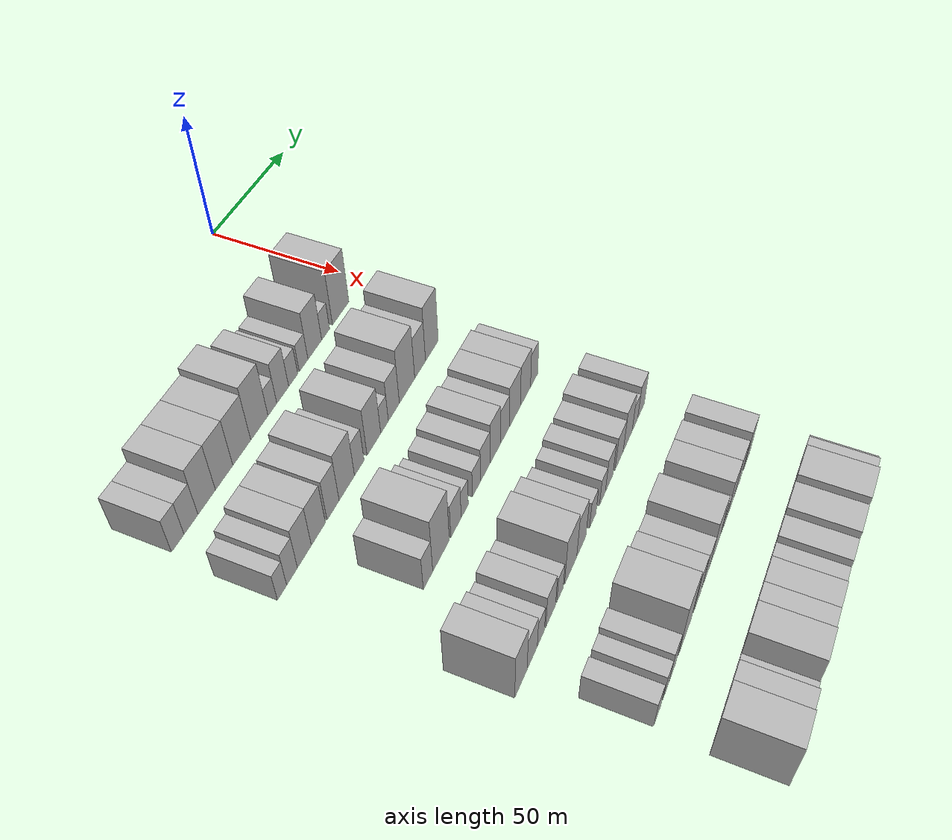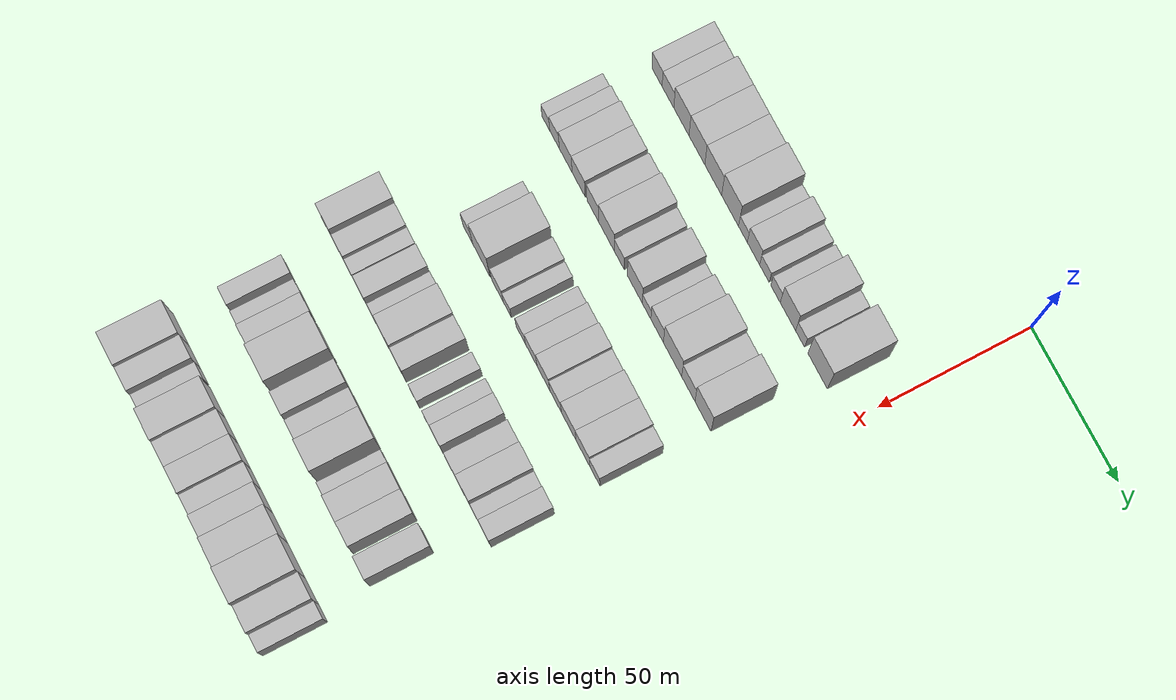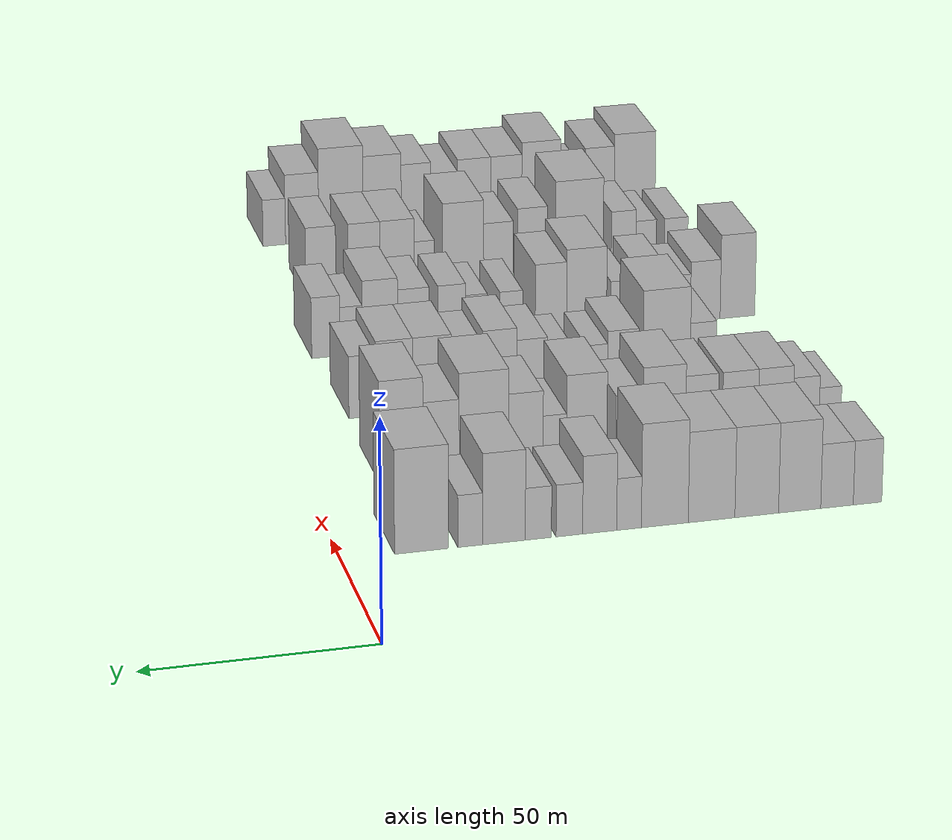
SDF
<sdf version="1.6">
 <world name="default">
  <model name="building_52">
   <static>1</static>
   <pose>50.0000 -115.1407 0 0.000000 0.000000 0.000000</pose>
   <link name="link">
    <pose>0 0 7.50 0 0 0</pose>
    <collision name="collision"><geometry><box><size>20.0000 6.3788 15.0000</size></box></geometry></collision>
    <visual name="visual">
     <cast_shadows>0</cast_shadows>
     <geometry><box><size>20.0000 6.3788 15.0000</size></box></geometry>
     <material>
      <script>
       <uri>model://HANNAS_wall/materials/scripts</uri>
       <uri>model://HANNAS_wall/materials/textures</uri>
       <name>vrc/HANNAS_wall</name>
      </script>
     </material>
    </visual>
   </link>
  </model>
  <model name="building_53">
   <static>1</static>
   <pose>50.0000 -108.3035 0 0.000000 0.000000 0.000000</pose>
   <link name="link">
    <pose>0 0 7.50 0 0 0</pose>
    <collision name="collision"><geometry><box><size>20.0000 7.2955 15.0000</size></box></geometry></collision>
    <visual name="visual">
     <cast_shadows>0</cast_shadows>
     <geometry><box><size>20.0000 7.2955 15.0000</size></box></geometry>
     <material>
      <script>
       <uri>model://HANNAS_wall/materials/scripts</uri>
       <uri>model://HANNAS_wall/materials/textures</uri>
       <name>vrc/HANNAS_wall</name>
      </script>
     </material>
    </visual>
   </link>
  </model>
  <model name="building_54">
   <static>1</static>
   <pose>50.0000 -99.9604 0 0.000000 0.000000 0.000000</pose>
   <link name="link">
    <pose>0 0 10.50 0 0 0</pose>
    <collision name="collision"><geometry><box><size>20.0000 9.3906 21.0000</size></box></geometry></collision>
    <visual name="visual">
     <cast_shadows>0</cast_shadows>
     <geometry><box><size>20.0000 9.3906 21.0000</size></box></geometry>
     <material>
      <script>
       <uri>model://HANNAS_wall/materials/scripts</uri>
       <uri>model://HANNAS_wall/materials/textures</uri>
       <name>vrc/HANNAS_wall</name>
      </script>
     </material>
    </visual>
   </link>
  </model>
  <model name="building_55">
   <static>1</static>
   <pose>50.0000 -90.4165 0 0.000000 0.000000 0.000000</pose>
   <link name="link">
    <pose>0 0 10.50 0 0 0</pose>
    <collision name="collision"><geometry><box><size>20.0000 9.6972 21.0000</size></box></geometry></collision>
    <visual name="visual">
     <cast_shadows>0</cast_shadows>
     <geometry><box><size>20.0000 9.6972 21.0000</size></box></geometry>
     <material>
      <script>
       <uri>model://HANNAS_wall/materials/scripts</uri>
       <uri>model://HANNAS_wall/materials/textures</uri>
       <name>vrc/HANNAS_wall</name>
      </script>
     </material>
    </visual>
   </link>
  </model>
  <model name="building_56">
   <static>1</static>
   <pose>50.0000 -80.4084 0 0.000000 0.000000 0.000000</pose>
   <link name="link">
    <pose>0 0 10.50 0 0 0</pose>
    <collision name="collision"><geometry><box><size>20.0000 10.3191 21.0000</size></box></geometry></collision>
    <visual name="visual">
     <cast_shadows>0</cast_shadows>
     <geometry><box><size>20.0000 10.3191 21.0000</size></box></geometry>
     <material>
      <script>
       <uri>model://HANNAS_wall/materials/scripts</uri>
       <uri>model://HANNAS_wall/materials/textures</uri>
       <name>vrc/HANNAS_wall</name>
      </script>
     </material>
    </visual>
   </link>
  </model>
  <model name="building_57">
   <static>1</static>
   <pose>50.0000 -70.0947 0 0.000000 0.000000 0.000000</pose>
   <link name="link">
    <pose>0 0 12.00 0 0 0</pose>
    <collision name="collision"><geometry><box><size>20.0000 10.3084 24.0000</size></box></geometry></collision>
    <visual name="visual">
     <cast_shadows>0</cast_shadows>
     <geometry><box><size>20.0000 10.3084 24.0000</size></box></geometry>
     <material>
      <script>
       <uri>model://HANNAS_wall/materials/scripts</uri>
       <uri>model://HANNAS_wall/materials/textures</uri>
       <name>vrc/HANNAS_wall</name>
      </script>
     </material>
    </visual>
   </link>
  </model>
  <model name="building_58">
   <static>1</static>
   <pose>50.0000 -62.2498 0 0.000000 0.000000 0.000000</pose>
   <link name="link">
    <pose>0 0 6.00 0 0 0</pose>
    <collision name="collision"><geometry><box><size>20.0000 5.3814 12.0000</size></box></geometry></collision>
    <visual name="visual">
     <cast_shadows>0</cast_shadows>
     <geometry><box><size>20.0000 5.3814 12.0000</size></box></geometry>
     <material>
      <script>
       <uri>model://HANNAS_wall/materials/scripts</uri>
       <uri>model://HANNAS_wall/materials/textures</uri>
       <name>vrc/HANNAS_wall</name>
      </script>
     </material>
    </visual>
   </link>
  </model>
  <model name="building_59">
   <static>1</static>
   <pose>50.0000 -55.8324 0 0.000000 0.000000 0.000000</pose>
   <link name="link">
    <pose>0 0 9.00 0 0 0</pose>
    <collision name="collision"><geometry><box><size>20.0000 7.4535 18.0000</size></box></geometry></collision>
    <visual name="visual">
     <cast_shadows>0</cast_shadows>
     <geometry><box><size>20.0000 7.4535 18.0000</size></box></geometry>
     <material>
      <script>
       <uri>model://HANNAS_wall/materials/scripts</uri>
       <uri>model://HANNAS_wall/materials/textures</uri>
       <name>vrc/HANNAS_wall</name>
      </script>
     </material>
    </visual>
   </link>
  </model>
  <model name="building_60">
   <static>1</static>
   <pose>50.0000 -49.2117 0 0.000000 0.000000 0.000000</pose>
   <link name="link">
    <pose>0 0 6.00 0 0 0</pose>
    <collision name="collision"><geometry><box><size>20.0000 5.7879 12.0000</size></box></geometry></collision>
    <visual name="visual">
     <cast_shadows>0</cast_shadows>
     <geometry><box><size>20.0000 5.7879 12.0000</size></box></geometry>
     <material>
      <script>
       <uri>model://HANNAS_wall/materials/scripts</uri>
       <uri>model://HANNAS_wall/materials/textures</uri>
       <name>vrc/HANNAS_wall</name>
      </script>
     </material>
    </visual>
   </link>
  </model>
  <model name="building_61">
   <static>1</static>
   <pose>50.0000 -42.4862 0 0.000000 0.000000 0.000000</pose>
   <link name="link">
    <pose>0 0 6.00 0 0 0</pose>
    <collision name="collision"><geometry><box><size>20.0000 5.6632 12.0000</size></box></geometry></collision>
    <visual name="visual">
     <cast_shadows>0</cast_shadows>
     <geometry><box><size>20.0000 5.6632 12.0000</size></box></geometry>
     <material>
      <script>
       <uri>model://HANNAS_wall/materials/scripts</uri>
       <uri>model://HANNAS_wall/materials/textures</uri>
       <name>vrc/HANNAS_wall</name>
      </script>
     </material>
    </visual>
   </link>
  </model>
  <model name="building_62">
   <static>1</static>
   <pose>50.0000 -35.0525 0 0.000000 0.000000 0.000000</pose>
   <link name="link">
    <pose>0 0 10.50 0 0 0</pose>
    <collision name="collision"><geometry><box><size>20.0000 9.2043 21.0000</size></box></geometry></collision>
    <visual name="visual">
     <cast_shadows>0</cast_shadows>
     <geometry><box><size>20.0000 9.2043 21.0000</size></box></geometry>
     <material>
      <script>
       <uri>model://HANNAS_wall/materials/scripts</uri>
       <uri>model://HANNAS_wall/materials/textures</uri>
       <name>vrc/HANNAS_wall</name>
      </script>
     </material>
    </visual>
   </link>
  </model>
  <model name="building_63">
   <static>1</static>
   <pose>50.0000 -27.7514 0 0.000000 0.000000 0.000000</pose>
   <link name="link">
    <pose>0 0 6.00 0 0 0</pose>
    <collision name="collision"><geometry><box><size>20.0000 5.3979 12.0000</size></box></geometry></collision>
    <visual name="visual">
     <cast_shadows>0</cast_shadows>
     <geometry><box><size>20.0000 5.3979 12.0000</size></box></geometry>
     <material>
      <script>
       <uri>model://HANNAS_wall/materials/scripts</uri>
       <uri>model://HANNAS_wall/materials/textures</uri>
       <name>vrc/HANNAS_wall</name>
      </script>
     </material>
    </visual>
   </link>
  </model>
  <model name="building_64">
   <static>1</static>
   <pose>50.0000 -17.2545 0 0.000000 0.000000 0.000000</pose>
   <link name="link">
    <pose>0 0 12.00 0 0 0</pose>
    <collision name="collision"><geometry><box><size>20.0000 11.5959 24.0000</size></box></geometry></collision>
    <visual name="visual">
     <cast_shadows>0</cast_shadows>
     <geometry><box><size>20.0000 11.5959 24.0000</size></box></geometry>
     <material>
      <script>
       <uri>model://HANNAS_wall/materials/scripts</uri>
       <uri>model://HANNAS_wall/materials/textures</uri>
       <name>vrc/HANNAS_wall</name>
      </script>
     </material>
    </visual>
   </link>
  </model>
  <model name="building_182">
   <static>1</static>
   <pose>85.0000 -117.7365 0 0.000000 0.000000 0.000000</pose>
   <link name="link">
    <pose>0 0 6.00 0 0 0</pose>
    <collision name="collision"><geometry><box><size>20.0000 5.0405 12.0000</size></box></geometry></collision>
    <visual name="visual">
     <cast_shadows>0</cast_shadows>
     <geometry><box><size>20.0000 5.0405 12.0000</size></box></geometry>
     <material>
      <script>
       <uri>model://HANNAS_wall/materials/scripts</uri>
       <uri>model://HANNAS_wall/materials/textures</uri>
       <name>vrc/HANNAS_wall</name>
      </script>
     </material>
    </visual>
   </link>
  </model>
  <model name="building_183">
   <static>1</static>
   <pose>85.0000 -112.2111 0 0.000000 0.000000 0.000000</pose>
   <link name="link">
    <pose>0 0 7.50 0 0 0</pose>
    <collision name="collision"><geometry><box><size>20.0000 6.0103 15.0000</size></box></geometry></collision>
    <visual name="visual">
     <cast_shadows>0</cast_shadows>
     <geometry><box><size>20.0000 6.0103 15.0000</size></box></geometry>
     <material>
      <script>
       <uri>model://HANNAS_wall/materials/scripts</uri>
       <uri>model://HANNAS_wall/materials/textures</uri>
       <name>vrc/HANNAS_wall</name>
      </script>
     </material>
    </visual>
   </link>
  </model>
  <model name="building_184">
   <static>1</static>
   <pose>85.0000 -105.2247 0 0.000000 0.000000 0.000000</pose>
   <link name="link">
    <pose>0 0 9.00 0 0 0</pose>
    <collision name="collision"><geometry><box><size>20.0000 7.9626 18.0000</size></box></geometry></collision>
    <visual name="visual">
     <cast_shadows>0</cast_shadows>
     <geometry><box><size>20.0000 7.9626 18.0000</size></box></geometry>
     <material>
      <script>
       <uri>model://HANNAS_wall/materials/scripts</uri>
       <uri>model://HANNAS_wall/materials/textures</uri>
       <name>vrc/HANNAS_wall</name>
      </script>
     </material>
    </visual>
   </link>
  </model>
  <model name="building_185">
   <static>1</static>
   <pose>85.0000 -97.1164 0 0.000000 0.000000 0.000000</pose>
   <link name="link">
    <pose>0 0 9.00 0 0 0</pose>
    <collision name="collision"><geometry><box><size>20.0000 8.2541 18.0000</size></box></geometry></collision>
    <visual name="visual">
     <cast_shadows>0</cast_shadows>
     <geometry><box><size>20.0000 8.2541 18.0000</size></box></geometry>
     <material>
      <script>
       <uri>model://HANNAS_wall/materials/scripts</uri>
       <uri>model://HANNAS_wall/materials/textures</uri>
       <name>vrc/HANNAS_wall</name>
      </script>
     </material>
    </visual>
   </link>
  </model>
  <model name="building_186">
   <static>1</static>
   <pose>85.0000 -88.3049 0 0.000000 0.000000 0.000000</pose>
   <link name="link">
    <pose>0 0 9.00 0 0 0</pose>
    <collision name="collision"><geometry><box><size>20.0000 7.3688 18.0000</size></box></geometry></collision>
    <visual name="visual">
     <cast_shadows>0</cast_shadows>
     <geometry><box><size>20.0000 7.3688 18.0000</size></box></geometry>
     <material>
      <script>
       <uri>model://HANNAS_wall/materials/scripts</uri>
       <uri>model://HANNAS_wall/materials/textures</uri>
       <name>vrc/HANNAS_wall</name>
      </script>
     </material>
    </visual>
   </link>
  </model>
  <model name="building_187">
   <static>1</static>
   <pose>85.0000 -79.7971 0 0.000000 0.000000 0.000000</pose>
   <link name="link">
    <pose>0 0 10.50 0 0 0</pose>
    <collision name="collision"><geometry><box><size>20.0000 9.6469 21.0000</size></box></geometry></collision>
    <visual name="visual">
     <cast_shadows>0</cast_shadows>
     <geometry><box><size>20.0000 9.6469 21.0000</size></box></geometry>
     <material>
      <script>
       <uri>model://HANNAS_wall/materials/scripts</uri>
       <uri>model://HANNAS_wall/materials/textures</uri>
       <name>vrc/HANNAS_wall</name>
      </script>
     </material>
    </visual>
   </link>
  </model>
  <model name="building_188">
   <static>1</static>
   <pose>85.0000 -71.9018 0 0.000000 0.000000 0.000000</pose>
   <link name="link">
    <pose>0 0 7.50 0 0 0</pose>
    <collision name="collision"><geometry><box><size>20.0000 6.1437 15.0000</size></box></geometry></collision>
    <visual name="visual">
     <cast_shadows>0</cast_shadows>
     <geometry><box><size>20.0000 6.1437 15.0000</size></box></geometry>
     <material>
      <script>
       <uri>model://HANNAS_wall/materials/scripts</uri>
       <uri>model://HANNAS_wall/materials/textures</uri>
       <name>vrc/HANNAS_wall</name>
      </script>
     </material>
    </visual>
   </link>
  </model>
  <model name="building_189">
   <static>1</static>
   <pose>85.0000 -62.2679 0 0.000000 0.000000 0.000000</pose>
   <link name="link">
    <pose>0 0 10.50 0 0 0</pose>
    <collision name="collision"><geometry><box><size>20.0000 9.1241 21.0000</size></box></geometry></collision>
    <visual name="visual">
     <cast_shadows>0</cast_shadows>
     <geometry><box><size>20.0000 9.1241 21.0000</size></box></geometry>
     <material>
      <script>
       <uri>model://HANNAS_wall/materials/scripts</uri>
       <uri>model://HANNAS_wall/materials/textures</uri>
       <name>vrc/HANNAS_wall</name>
      </script>
     </material>
    </visual>
   </link>
  </model>
  <model name="building_190">
   <static>1</static>
   <pose>85.0000 -55.0927 0 0.000000 0.000000 0.000000</pose>
   <link name="link">
    <pose>0 0 6.00 0 0 0</pose>
    <collision name="collision"><geometry><box><size>20.0000 5.2264 12.0000</size></box></geometry></collision>
    <visual name="visual">
     <cast_shadows>0</cast_shadows>
     <geometry><box><size>20.0000 5.2264 12.0000</size></box></geometry>
     <material>
      <script>
       <uri>model://HANNAS_wall/materials/scripts</uri>
       <uri>model://HANNAS_wall/materials/textures</uri>
       <name>vrc/HANNAS_wall</name>
      </script>
     </material>
    </visual>
   </link>
  </model>
  <model name="building_191">
   <static>1</static>
   <pose>85.0000 -48.6452 0 0.000000 0.000000 0.000000</pose>
   <link name="link">
    <pose>0 0 9.00 0 0 0</pose>
    <collision name="collision"><geometry><box><size>20.0000 7.6686 18.0000</size></box></geometry></collision>
    <visual name="visual">
     <cast_shadows>0</cast_shadows>
     <geometry><box><size>20.0000 7.6686 18.0000</size></box></geometry>
     <material>
      <script>
       <uri>model://HANNAS_wall/materials/scripts</uri>
       <uri>model://HANNAS_wall/materials/textures</uri>
       <name>vrc/HANNAS_wall</name>
      </script>
     </material>
    </visual>
   </link>
  </model>
  <model name="building_192">
   <static>1</static>
   <pose>85.0000 -39.2685 0 0.000000 0.000000 0.000000</pose>
   <link name="link">
    <pose>0 0 12.00 0 0 0</pose>
    <collision name="collision"><geometry><box><size>20.0000 11.0847 24.0000</size></box></geometry></collision>
    <visual name="visual">
     <cast_shadows>0</cast_shadows>
     <geometry><box><size>20.0000 11.0847 24.0000</size></box></geometry>
     <material>
      <script>
       <uri>model://HANNAS_wall/materials/scripts</uri>
       <uri>model://HANNAS_wall/materials/textures</uri>
       <name>vrc/HANNAS_wall</name>
      </script>
     </material>
    </visual>
   </link>
  </model>
  <model name="building_193">
   <static>1</static>
   <pose>85.0000 -29.7207 0 0.000000 0.000000 0.000000</pose>
   <link name="link">
    <pose>0 0 9.00 0 0 0</pose>
    <collision name="collision"><geometry><box><size>20.0000 8.0111 18.0000</size></box></geometry></collision>
    <visual name="visual">
     <cast_shadows>0</cast_shadows>
     <geometry><box><size>20.0000 8.0111 18.0000</size></box></geometry>
     <material>
      <script>
       <uri>model://HANNAS_wall/materials/scripts</uri>
       <uri>model://HANNAS_wall/materials/textures</uri>
       <name>vrc/HANNAS_wall</name>
      </script>
     </material>
    </visual>
   </link>
  </model>
  <model name="building_194">
   <static>1</static>
   <pose>85.0000 -20.8688 0 0.000000 0.000000 0.000000</pose>
   <link name="link">
    <pose>0 0 12.00 0 0 0</pose>
    <collision name="collision"><geometry><box><size>20.0000 9.6927 24.0000</size></box></geometry></collision>
    <visual name="visual">
     <cast_shadows>0</cast_shadows>
     <geometry><box><size>20.0000 9.6927 24.0000</size></box></geometry>
     <material>
      <script>
       <uri>model://HANNAS_wall/materials/scripts</uri>
       <uri>model://HANNAS_wall/materials/textures</uri>
       <name>vrc/HANNAS_wall</name>
      </script>
     </material>
    </visual>
   </link>
  </model>
  <model name="building_287">
   <static>1</static>
   <pose>120.0000 -98.8208 0 0.000000 0.000000 0.000000</pose>
   <link name="link">
    <pose>0 0 7.50 0 0 0</pose>
    <collision name="collision"><geometry><box><size>20.0000 6.1141 15.0000</size></box></geometry></collision>
    <visual name="visual">
     <cast_shadows>0</cast_shadows>
     <geometry><box><size>20.0000 6.1141 15.0000</size></box></geometry>
     <material>
      <script>
       <uri>model://HANNAS_wall/materials/scripts</uri>
       <uri>model://HANNAS_wall/materials/textures</uri>
       <name>vrc/HANNAS_wall</name>
      </script>
     </material>
    </visual>
   </link>
  </model>
  <model name="building_288">
   <static>1</static>
   <pose>120.0000 -90.2107 0 0.000000 0.000000 0.000000</pose>
   <link name="link">
    <pose>0 0 12.00 0 0 0</pose>
    <collision name="collision"><geometry><box><size>20.0000 11.1062 24.0000</size></box></geometry></collision>
    <visual name="visual">
     <cast_shadows>0</cast_shadows>
     <geometry><box><size>20.0000 11.1062 24.0000</size></box></geometry>
     <material>
      <script>
       <uri>model://HANNAS_wall/materials/scripts</uri>
       <uri>model://HANNAS_wall/materials/textures</uri>
       <name>vrc/HANNAS_wall</name>
      </script>
     </material>
    </visual>
   </link>
  </model>
  <model name="building_289">
   <static>1</static>
   <pose>120.0000 -80.0466 0 0.000000 0.000000 0.000000</pose>
   <link name="link">
    <pose>0 0 7.50 0 0 0</pose>
    <collision name="collision"><geometry><box><size>20.0000 7.2221 15.0000</size></box></geometry></collision>
    <visual name="visual">
     <cast_shadows>0</cast_shadows>
     <geometry><box><size>20.0000 7.2221 15.0000</size></box></geometry>
     <material>
      <script>
       <uri>model://HANNAS_wall/materials/scripts</uri>
       <uri>model://HANNAS_wall/materials/textures</uri>
       <name>vrc/HANNAS_wall</name>
      </script>
     </material>
    </visual>
   </link>
  </model>
  <model name="building_290">
   <static>1</static>
   <pose>120.0000 -73.9264 0 0.000000 0.000000 0.000000</pose>
   <link name="link">
    <pose>0 0 6.00 0 0 0</pose>
    <collision name="collision"><geometry><box><size>20.0000 5.0183 12.0000</size></box></geometry></collision>
    <visual name="visual">
     <cast_shadows>0</cast_shadows>
     <geometry><box><size>20.0000 5.0183 12.0000</size></box></geometry>
     <material>
      <script>
       <uri>model://HANNAS_wall/materials/scripts</uri>
       <uri>model://HANNAS_wall/materials/textures</uri>
       <name>vrc/HANNAS_wall</name>
      </script>
     </material>
    </visual>
   </link>
  </model>
  <model name="building_291">
   <static>1</static>
   <pose>120.0000 -65.4470 0 0.000000 0.000000 0.000000</pose>
   <link name="link">
    <pose>0 0 6.00 0 0 0</pose>
    <collision name="collision"><geometry><box><size>20.0000 5.9405 12.0000</size></box></geometry></collision>
    <visual name="visual">
     <cast_shadows>0</cast_shadows>
     <geometry><box><size>20.0000 5.9405 12.0000</size></box></geometry>
     <material>
      <script>
       <uri>model://HANNAS_wall/materials/scripts</uri>
       <uri>model://HANNAS_wall/materials/textures</uri>
       <name>vrc/HANNAS_wall</name>
      </script>
     </material>
    </visual>
   </link>
  </model>
  <model name="building_292">
   <static>1</static>
   <pose>120.0000 -58.9150 0 0.000000 0.000000 0.000000</pose>
   <link name="link">
    <pose>0 0 7.50 0 0 0</pose>
    <collision name="collision"><geometry><box><size>20.0000 7.1235 15.0000</size></box></geometry></collision>
    <visual name="visual">
     <cast_shadows>0</cast_shadows>
     <geometry><box><size>20.0000 7.1235 15.0000</size></box></geometry>
     <material>
      <script>
       <uri>model://HANNAS_wall/materials/scripts</uri>
       <uri>model://HANNAS_wall/materials/textures</uri>
       <name>vrc/HANNAS_wall</name>
      </script>
     </material>
    </visual>
   </link>
  </model>
  <model name="building_293">
   <static>1</static>
   <pose>120.0000 -51.4471 0 0.000000 0.000000 0.000000</pose>
   <link name="link">
    <pose>0 0 9.00 0 0 0</pose>
    <collision name="collision"><geometry><box><size>20.0000 7.8122 18.0000</size></box></geometry></collision>
    <visual name="visual">
     <cast_shadows>0</cast_shadows>
     <geometry><box><size>20.0000 7.8122 18.0000</size></box></geometry>
     <material>
      <script>
       <uri>model://HANNAS_wall/materials/scripts</uri>
       <uri>model://HANNAS_wall/materials/textures</uri>
       <name>vrc/HANNAS_wall</name>
      </script>
     </material>
    </visual>
   </link>
  </model>
  <model name="building_294">
   <static>1</static>
   <pose>120.0000 -43.9200 0 0.000000 0.000000 0.000000</pose>
   <link name="link">
    <pose>0 0 7.50 0 0 0</pose>
    <collision name="collision"><geometry><box><size>20.0000 7.2420 15.0000</size></box></geometry></collision>
    <visual name="visual">
     <cast_shadows>0</cast_shadows>
     <geometry><box><size>20.0000 7.2420 15.0000</size></box></geometry>
     <material>
      <script>
       <uri>model://HANNAS_wall/materials/scripts</uri>
       <uri>model://HANNAS_wall/materials/textures</uri>
       <name>vrc/HANNAS_wall</name>
      </script>
     </material>
    </visual>
   </link>
  </model>
  <model name="building_295">
   <static>1</static>
   <pose>120.0000 -35.8579 0 0.000000 0.000000 0.000000</pose>
   <link name="link">
    <pose>0 0 9.00 0 0 0</pose>
    <collision name="collision"><geometry><box><size>20.0000 8.8821 18.0000</size></box></geometry></collision>
    <visual name="visual">
     <cast_shadows>0</cast_shadows>
     <geometry><box><size>20.0000 8.8821 18.0000</size></box></geometry>
     <material>
      <script>
       <uri>model://HANNAS_wall/materials/scripts</uri>
       <uri>model://HANNAS_wall/materials/textures</uri>
       <name>vrc/HANNAS_wall</name>
      </script>
     </material>
    </visual>
   </link>
  </model>
  <model name="building_296">
   <static>1</static>
   <pose>120.0000 -27.1878 0 0.000000 0.000000 0.000000</pose>
   <link name="link">
    <pose>0 0 9.00 0 0 0</pose>
    <collision name="collision"><geometry><box><size>20.0000 8.4581 18.0000</size></box></geometry></collision>
    <visual name="visual">
     <cast_shadows>0</cast_shadows>
     <geometry><box><size>20.0000 8.4581 18.0000</size></box></geometry>
     <material>
      <script>
       <uri>model://HANNAS_wall/materials/scripts</uri>
       <uri>model://HANNAS_wall/materials/textures</uri>
       <name>vrc/HANNAS_wall</name>
      </script>
     </material>
    </visual>
   </link>
  </model>
  <model name="building_297">
   <static>1</static>
   <pose>120.0000 -19.8874 0 0.000000 0.000000 0.000000</pose>
   <link name="link">
    <pose>0 0 7.50 0 0 0</pose>
    <collision name="collision"><geometry><box><size>20.0000 6.1427 15.0000</size></box></geometry></collision>
    <visual name="visual">
     <cast_shadows>0</cast_shadows>
     <geometry><box><size>20.0000 6.1427 15.0000</size></box></geometry>
     <material>
      <script>
       <uri>model://HANNAS_wall/materials/scripts</uri>
       <uri>model://HANNAS_wall/materials/textures</uri>
       <name>vrc/HANNAS_wall</name>
      </script>
     </material>
    </visual>
   </link>
  </model>
  <model name="building_410">
   <static>1</static>
   <pose>155.0000 -117.4013 0 0.000000 0.000000 0.000000</pose>
   <link name="link">
    <pose>0 0 10.50 0 0 0</pose>
    <collision name="collision"><geometry><box><size>20.0000 8.4733 21.0000</size></box></geometry></collision>
    <visual name="visual">
     <cast_shadows>0</cast_shadows>
     <geometry><box><size>20.0000 8.4733 21.0000</size></box></geometry>
     <material>
      <script>
       <uri>model://HANNAS_wall/materials/scripts</uri>
       <uri>model://HANNAS_wall/materials/textures</uri>
       <name>vrc/HANNAS_wall</name>
      </script>
     </material>
    </visual>
   </link>
  </model>
  <model name="building_411">
   <static>1</static>
   <pose>155.0000 -109.5475 0 0.000000 0.000000 0.000000</pose>
   <link name="link">
    <pose>0 0 7.50 0 0 0</pose>
    <collision name="collision"><geometry><box><size>20.0000 7.2344 15.0000</size></box></geometry></collision>
    <visual name="visual">
     <cast_shadows>0</cast_shadows>
     <geometry><box><size>20.0000 7.2344 15.0000</size></box></geometry>
     <material>
      <script>
       <uri>model://HANNAS_wall/materials/scripts</uri>
       <uri>model://HANNAS_wall/materials/textures</uri>
       <name>vrc/HANNAS_wall</name>
      </script>
     </material>
    </visual>
   </link>
  </model>
  <model name="building_412">
   <static>1</static>
   <pose>155.0000 -103.3545 0 0.000000 0.000000 0.000000</pose>
   <link name="link">
    <pose>0 0 6.00 0 0 0</pose>
    <collision name="collision"><geometry><box><size>20.0000 5.1514 12.0000</size></box></geometry></collision>
    <visual name="visual">
     <cast_shadows>0</cast_shadows>
     <geometry><box><size>20.0000 5.1514 12.0000</size></box></geometry>
     <material>
      <script>
       <uri>model://HANNAS_wall/materials/scripts</uri>
       <uri>model://HANNAS_wall/materials/textures</uri>
       <name>vrc/HANNAS_wall</name>
      </script>
     </material>
    </visual>
   </link>
  </model>
  <model name="building_413">
   <static>1</static>
   <pose>155.0000 -96.1472 0 0.000000 0.000000 0.000000</pose>
   <link name="link">
    <pose>0 0 7.50 0 0 0</pose>
    <collision name="collision"><geometry><box><size>20.0000 7.2633 15.0000</size></box></geometry></collision>
    <visual name="visual">
     <cast_shadows>0</cast_shadows>
     <geometry><box><size>20.0000 7.2633 15.0000</size></box></geometry>
     <material>
      <script>
       <uri>model://HANNAS_wall/materials/scripts</uri>
       <uri>model://HANNAS_wall/materials/textures</uri>
       <name>vrc/HANNAS_wall</name>
      </script>
     </material>
    </visual>
   </link>
  </model>
  <model name="building_414">
   <static>1</static>
   <pose>155.0000 -89.0746 0 0.000000 0.000000 0.000000</pose>
   <link name="link">
    <pose>0 0 6.00 0 0 0</pose>
    <collision name="collision"><geometry><box><size>20.0000 4.8819 12.0000</size></box></geometry></collision>
    <visual name="visual">
     <cast_shadows>0</cast_shadows>
     <geometry><box><size>20.0000 4.8819 12.0000</size></box></geometry>
     <material>
      <script>
       <uri>model://HANNAS_wall/materials/scripts</uri>
       <uri>model://HANNAS_wall/materials/textures</uri>
       <name>vrc/HANNAS_wall</name>
      </script>
     </material>
    </visual>
   </link>
  </model>
  <model name="building_415">
   <static>1</static>
   <pose>155.0000 -80.8366 0 0.000000 0.000000 0.000000</pose>
   <link name="link">
    <pose>0 0 10.50 0 0 0</pose>
    <collision name="collision"><geometry><box><size>20.0000 9.5941 21.0000</size></box></geometry></collision>
    <visual name="visual">
     <cast_shadows>0</cast_shadows>
     <geometry><box><size>20.0000 9.5941 21.0000</size></box></geometry>
     <material>
      <script>
       <uri>model://HANNAS_wall/materials/scripts</uri>
       <uri>model://HANNAS_wall/materials/textures</uri>
       <name>vrc/HANNAS_wall</name>
      </script>
     </material>
    </visual>
   </link>
  </model>
  <model name="building_416">
   <static>1</static>
   <pose>155.0000 -72.2776 0 0.000000 0.000000 0.000000</pose>
   <link name="link">
    <pose>0 0 9.00 0 0 0</pose>
    <collision name="collision"><geometry><box><size>20.0000 7.5239 18.0000</size></box></geometry></collision>
    <visual name="visual">
     <cast_shadows>0</cast_shadows>
     <geometry><box><size>20.0000 7.5239 18.0000</size></box></geometry>
     <material>
      <script>
       <uri>model://HANNAS_wall/materials/scripts</uri>
       <uri>model://HANNAS_wall/materials/textures</uri>
       <name>vrc/HANNAS_wall</name>
      </script>
     </material>
    </visual>
   </link>
  </model>
  <model name="building_417">
   <static>1</static>
   <pose>155.0000 -62.8114 0 0.000000 0.000000 0.000000</pose>
   <link name="link">
    <pose>0 0 6.00 0 0 0</pose>
    <collision name="collision"><geometry><box><size>20.0000 5.4085 12.0000</size></box></geometry></collision>
    <visual name="visual">
     <cast_shadows>0</cast_shadows>
     <geometry><box><size>20.0000 5.4085 12.0000</size></box></geometry>
     <material>
      <script>
       <uri>model://HANNAS_wall/materials/scripts</uri>
       <uri>model://HANNAS_wall/materials/textures</uri>
       <name>vrc/HANNAS_wall</name>
      </script>
     </material>
    </visual>
   </link>
  </model>
  <model name="building_418">
   <static>1</static>
   <pose>155.0000 -54.5343 0 0.000000 0.000000 0.000000</pose>
   <link name="link">
    <pose>0 0 6.00 0 0 0</pose>
    <collision name="collision"><geometry><box><size>20.0000 5.1457 12.0000</size></box></geometry></collision>
    <visual name="visual">
     <cast_shadows>0</cast_shadows>
     <geometry><box><size>20.0000 5.1457 12.0000</size></box></geometry>
     <material>
      <script>
       <uri>model://HANNAS_wall/materials/scripts</uri>
       <uri>model://HANNAS_wall/materials/textures</uri>
       <name>vrc/HANNAS_wall</name>
      </script>
     </material>
    </visual>
   </link>
  </model>
  <model name="building_419">
   <static>1</static>
   <pose>155.0000 -48.6627 0 0.000000 0.000000 0.000000</pose>
   <link name="link">
    <pose>0 0 7.50 0 0 0</pose>
    <collision name="collision"><geometry><box><size>20.0000 6.5975 15.0000</size></box></geometry></collision>
    <visual name="visual">
     <cast_shadows>0</cast_shadows>
     <geometry><box><size>20.0000 6.5975 15.0000</size></box></geometry>
     <material>
      <script>
       <uri>model://HANNAS_wall/materials/scripts</uri>
       <uri>model://HANNAS_wall/materials/textures</uri>
       <name>vrc/HANNAS_wall</name>
      </script>
     </material>
    </visual>
   </link>
  </model>
  <model name="building_420">
   <static>1</static>
   <pose>155.0000 -39.6333 0 0.000000 0.000000 0.000000</pose>
   <link name="link">
    <pose>0 0 7.50 0 0 0</pose>
    <collision name="collision"><geometry><box><size>20.0000 7.4614 15.0000</size></box></geometry></collision>
    <visual name="visual">
     <cast_shadows>0</cast_shadows>
     <geometry><box><size>20.0000 7.4614 15.0000</size></box></geometry>
     <material>
      <script>
       <uri>model://HANNAS_wall/materials/scripts</uri>
       <uri>model://HANNAS_wall/materials/textures</uri>
       <name>vrc/HANNAS_wall</name>
      </script>
     </material>
    </visual>
   </link>
  </model>
  <model name="building_421">
   <static>1</static>
   <pose>155.0000 -31.7392 0 0.000000 0.000000 0.000000</pose>
   <link name="link">
    <pose>0 0 9.00 0 0 0</pose>
    <collision name="collision"><geometry><box><size>20.0000 8.3268 18.0000</size></box></geometry></collision>
    <visual name="visual">
     <cast_shadows>0</cast_shadows>
     <geometry><box><size>20.0000 8.3268 18.0000</size></box></geometry>
     <material>
      <script>
       <uri>model://HANNAS_wall/materials/scripts</uri>
       <uri>model://HANNAS_wall/materials/textures</uri>
       <name>vrc/HANNAS_wall</name>
      </script>
     </material>
    </visual>
   </link>
  </model>
  <model name="building_422">
   <static>1</static>
   <pose>155.0000 -24.9259 0 0.000000 0.000000 0.000000</pose>
   <link name="link">
    <pose>0 0 6.00 0 0 0</pose>
    <collision name="collision"><geometry><box><size>20.0000 5.2997 12.0000</size></box></geometry></collision>
    <visual name="visual">
     <cast_shadows>0</cast_shadows>
     <geometry><box><size>20.0000 5.2997 12.0000</size></box></geometry>
     <material>
      <script>
       <uri>model://HANNAS_wall/materials/scripts</uri>
       <uri>model://HANNAS_wall/materials/textures</uri>
       <name>vrc/HANNAS_wall</name>
      </script>
     </material>
    </visual>
   </link>
  </model>
  <model name="building_423">
   <static>1</static>
   <pose>155.0000 -18.9570 0 0.000000 0.000000 0.000000</pose>
   <link name="link">
    <pose>0 0 7.50 0 0 0</pose>
    <collision name="collision"><geometry><box><size>20.0000 6.6382 15.0000</size></box></geometry></collision>
    <visual name="visual">
     <cast_shadows>0</cast_shadows>
     <geometry><box><size>20.0000 6.6382 15.0000</size></box></geometry>
     <material>
      <script>
       <uri>model://HANNAS_wall/materials/scripts</uri>
       <uri>model://HANNAS_wall/materials/textures</uri>
       <name>vrc/HANNAS_wall</name>
      </script>
     </material>
    </visual>
   </link>
  </model>
  <model name="building_538">
   <static>1</static>
   <pose>190.0000 -112.3702 0 0.000000 0.000000 0.000000</pose>
   <link name="link">
    <pose>0 0 6.00 0 0 0</pose>
    <collision name="collision"><geometry><box><size>20.0000 5.8274 12.0000</size></box></geometry></collision>
    <visual name="visual">
     <cast_shadows>0</cast_shadows>
     <geometry><box><size>20.0000 5.8274 12.0000</size></box></geometry>
     <material>
      <script>
       <uri>model://HANNAS_wall/materials/scripts</uri>
       <uri>model://HANNAS_wall/materials/textures</uri>
       <name>vrc/HANNAS_wall</name>
      </script>
     </material>
    </visual>
   </link>
  </model>
  <model name="building_539">
   <static>1</static>
   <pose>190.0000 -104.9335 0 0.000000 0.000000 0.000000</pose>
   <link name="link">
    <pose>0 0 6.00 0 0 0</pose>
    <collision name="collision"><geometry><box><size>20.0000 5.0459 12.0000</size></box></geometry></collision>
    <visual name="visual">
     <cast_shadows>0</cast_shadows>
     <geometry><box><size>20.0000 5.0459 12.0000</size></box></geometry>
     <material>
      <script>
       <uri>model://HANNAS_wall/materials/scripts</uri>
       <uri>model://HANNAS_wall/materials/textures</uri>
       <name>vrc/HANNAS_wall</name>
      </script>
     </material>
    </visual>
   </link>
  </model>
  <model name="building_540">
   <static>1</static>
   <pose>190.0000 -99.3213 0 0.000000 0.000000 0.000000</pose>
   <link name="link">
    <pose>0 0 7.50 0 0 0</pose>
    <collision name="collision"><geometry><box><size>20.0000 6.1787 15.0000</size></box></geometry></collision>
    <visual name="visual">
     <cast_shadows>0</cast_shadows>
     <geometry><box><size>20.0000 6.1787 15.0000</size></box></geometry>
     <material>
      <script>
       <uri>model://HANNAS_wall/materials/scripts</uri>
       <uri>model://HANNAS_wall/materials/textures</uri>
       <name>vrc/HANNAS_wall</name>
      </script>
     </material>
    </visual>
   </link>
  </model>
  <model name="building_541">
   <static>1</static>
   <pose>190.0000 -88.3538 0 0.000000 0.000000 0.000000</pose>
   <link name="link">
    <pose>0 0 12.00 0 0 0</pose>
    <collision name="collision"><geometry><box><size>20.0000 11.7563 24.0000</size></box></geometry></collision>
    <visual name="visual">
     <cast_shadows>0</cast_shadows>
     <geometry><box><size>20.0000 11.7563 24.0000</size></box></geometry>
     <material>
      <script>
       <uri>model://HANNAS_wall/materials/scripts</uri>
       <uri>model://HANNAS_wall/materials/textures</uri>
       <name>vrc/HANNAS_wall</name>
      </script>
     </material>
    </visual>
   </link>
  </model>
  <model name="building_542">
   <static>1</static>
   <pose>190.0000 -76.7535 0 0.000000 0.000000 0.000000</pose>
   <link name="link">
    <pose>0 0 9.00 0 0 0</pose>
    <collision name="collision"><geometry><box><size>20.0000 7.4443 18.0000</size></box></geometry></collision>
    <visual name="visual">
     <cast_shadows>0</cast_shadows>
     <geometry><box><size>20.0000 7.4443 18.0000</size></box></geometry>
     <material>
      <script>
       <uri>model://HANNAS_wall/materials/scripts</uri>
       <uri>model://HANNAS_wall/materials/textures</uri>
       <name>vrc/HANNAS_wall</name>
      </script>
     </material>
    </visual>
   </link>
  </model>
  <model name="building_543">
   <static>1</static>
   <pose>190.0000 -68.4156 0 0.000000 0.000000 0.000000</pose>
   <link name="link">
    <pose>0 0 7.50 0 0 0</pose>
    <collision name="collision"><geometry><box><size>20.0000 7.2314 15.0000</size></box></geometry></collision>
    <visual name="visual">
     <cast_shadows>0</cast_shadows>
     <geometry><box><size>20.0000 7.2314 15.0000</size></box></geometry>
     <material>
      <script>
       <uri>model://HANNAS_wall/materials/scripts</uri>
       <uri>model://HANNAS_wall/materials/textures</uri>
       <name>vrc/HANNAS_wall</name>
      </script>
     </material>
    </visual>
   </link>
  </model>
  <model name="building_544">
   <static>1</static>
   <pose>190.0000 -59.7879 0 0.000000 0.000000 0.000000</pose>
   <link name="link">
    <pose>0 0 10.50 0 0 0</pose>
    <collision name="collision"><geometry><box><size>20.0000 10.0242 21.0000</size></box></geometry></collision>
    <visual name="visual">
     <cast_shadows>0</cast_shadows>
     <geometry><box><size>20.0000 10.0242 21.0000</size></box></geometry>
     <material>
      <script>
       <uri>model://HANNAS_wall/materials/scripts</uri>
       <uri>model://HANNAS_wall/materials/textures</uri>
       <name>vrc/HANNAS_wall</name>
      </script>
     </material>
    </visual>
   </link>
  </model>
  <model name="building_545">
   <static>1</static>
   <pose>190.0000 -50.2832 0 0.000000 0.000000 0.000000</pose>
   <link name="link">
    <pose>0 0 6.00 0 0 0</pose>
    <collision name="collision"><geometry><box><size>20.0000 4.9853 12.0000</size></box></geometry></collision>
    <visual name="visual">
     <cast_shadows>0</cast_shadows>
     <geometry><box><size>20.0000 4.9853 12.0000</size></box></geometry>
     <material>
      <script>
       <uri>model://HANNAS_wall/materials/scripts</uri>
       <uri>model://HANNAS_wall/materials/textures</uri>
       <name>vrc/HANNAS_wall</name>
      </script>
     </material>
    </visual>
   </link>
  </model>
  <model name="building_546">
   <static>1</static>
   <pose>190.0000 -43.6387 0 0.000000 0.000000 0.000000</pose>
   <link name="link">
    <pose>0 0 9.00 0 0 0</pose>
    <collision name="collision"><geometry><box><size>20.0000 8.3037 18.0000</size></box></geometry></collision>
    <visual name="visual">
     <cast_shadows>0</cast_shadows>
     <geometry><box><size>20.0000 8.3037 18.0000</size></box></geometry>
     <material>
      <script>
       <uri>model://HANNAS_wall/materials/scripts</uri>
       <uri>model://HANNAS_wall/materials/textures</uri>
       <name>vrc/HANNAS_wall</name>
      </script>
     </material>
    </visual>
   </link>
  </model>
  <model name="building_547">
   <static>1</static>
   <pose>190.0000 -35.6697 0 0.000000 0.000000 0.000000</pose>
   <link name="link">
    <pose>0 0 9.00 0 0 0</pose>
    <collision name="collision"><geometry><box><size>20.0000 7.6344 18.0000</size></box></geometry></collision>
    <visual name="visual">
     <cast_shadows>0</cast_shadows>
     <geometry><box><size>20.0000 7.6344 18.0000</size></box></geometry>
     <material>
      <script>
       <uri>model://HANNAS_wall/materials/scripts</uri>
       <uri>model://HANNAS_wall/materials/textures</uri>
       <name>vrc/HANNAS_wall</name>
      </script>
     </material>
    </visual>
   </link>
  </model>
  <model name="building_548">
   <static>1</static>
   <pose>190.0000 -25.2073 0 0.000000 0.000000 0.000000</pose>
   <link name="link">
    <pose>0 0 9.00 0 0 0</pose>
    <collision name="collision"><geometry><box><size>20.0000 7.2905 18.0000</size></box></geometry></collision>
    <visual name="visual">
     <cast_shadows>0</cast_shadows>
     <geometry><box><size>20.0000 7.2905 18.0000</size></box></geometry>
     <material>
      <script>
       <uri>model://HANNAS_wall/materials/scripts</uri>
       <uri>model://HANNAS_wall/materials/textures</uri>
       <name>vrc/HANNAS_wall</name>
      </script>
     </material>
    </visual>
   </link>
  </model>
  <model name="building_661">
   <static>1</static>
   <pose>225.0000 -111.7109 0 0.000000 0.000000 0.000000</pose>
   <link name="link">
    <pose>0 0 10.50 0 0 0</pose>
    <collision name="collision"><geometry><box><size>20.0000 10.4958 21.0000</size></box></geometry></collision>
    <visual name="visual">
     <cast_shadows>0</cast_shadows>
     <geometry><box><size>20.0000 10.4958 21.0000</size></box></geometry>
     <material>
      <script>
       <uri>model://HANNAS_wall/materials/scripts</uri>
       <uri>model://HANNAS_wall/materials/textures</uri>
       <name>vrc/HANNAS_wall</name>
      </script>
     </material>
    </visual>
   </link>
  </model>
  <model name="building_662">
   <static>1</static>
   <pose>225.0000 -102.7251 0 0.000000 0.000000 0.000000</pose>
   <link name="link">
    <pose>0 0 9.00 0 0 0</pose>
    <collision name="collision"><geometry><box><size>20.0000 7.4758 18.0000</size></box></geometry></collision>
    <visual name="visual">
     <cast_shadows>0</cast_shadows>
     <geometry><box><size>20.0000 7.4758 18.0000</size></box></geometry>
     <material>
      <script>
       <uri>model://HANNAS_wall/materials/scripts</uri>
       <uri>model://HANNAS_wall/materials/textures</uri>
       <name>vrc/HANNAS_wall</name>
      </script>
     </material>
    </visual>
   </link>
  </model>
  <model name="building_663">
   <static>1</static>
   <pose>225.0000 -96.3867 0 0.000000 0.000000 0.000000</pose>
   <link name="link">
    <pose>0 0 6.00 0 0 0</pose>
    <collision name="collision"><geometry><box><size>20.0000 5.2008 12.0000</size></box></geometry></collision>
    <visual name="visual">
     <cast_shadows>0</cast_shadows>
     <geometry><box><size>20.0000 5.2008 12.0000</size></box></geometry>
     <material>
      <script>
       <uri>model://HANNAS_wall/materials/scripts</uri>
       <uri>model://HANNAS_wall/materials/textures</uri>
       <name>vrc/HANNAS_wall</name>
      </script>
     </material>
    </visual>
   </link>
  </model>
  <model name="building_664">
   <static>1</static>
   <pose>225.0000 -87.8615 0 0.000000 0.000000 0.000000</pose>
   <link name="link">
    <pose>0 0 10.50 0 0 0</pose>
    <collision name="collision"><geometry><box><size>20.0000 9.8497 21.0000</size></box></geometry></collision>
    <visual name="visual">
     <cast_shadows>0</cast_shadows>
     <geometry><box><size>20.0000 9.8497 21.0000</size></box></geometry>
     <material>
      <script>
       <uri>model://HANNAS_wall/materials/scripts</uri>
       <uri>model://HANNAS_wall/materials/textures</uri>
       <name>vrc/HANNAS_wall</name>
      </script>
     </material>
    </visual>
   </link>
  </model>
  <model name="building_665">
   <static>1</static>
   <pose>225.0000 -78.9966 0 0.000000 0.000000 0.000000</pose>
   <link name="link">
    <pose>0 0 9.00 0 0 0</pose>
    <collision name="collision"><geometry><box><size>20.0000 7.8801 18.0000</size></box></geometry></collision>
    <visual name="visual">
     <cast_shadows>0</cast_shadows>
     <geometry><box><size>20.0000 7.8801 18.0000</size></box></geometry>
     <material>
      <script>
       <uri>model://HANNAS_wall/materials/scripts</uri>
       <uri>model://HANNAS_wall/materials/textures</uri>
       <name>vrc/HANNAS_wall</name>
      </script>
     </material>
    </visual>
   </link>
  </model>
  <model name="building_666">
   <static>1</static>
   <pose>225.0000 -70.9231 0 0.000000 0.000000 0.000000</pose>
   <link name="link">
    <pose>0 0 9.00 0 0 0</pose>
    <collision name="collision"><geometry><box><size>20.0000 8.2668 18.0000</size></box></geometry></collision>
    <visual name="visual">
     <cast_shadows>0</cast_shadows>
     <geometry><box><size>20.0000 8.2668 18.0000</size></box></geometry>
     <material>
      <script>
       <uri>model://HANNAS_wall/materials/scripts</uri>
       <uri>model://HANNAS_wall/materials/textures</uri>
       <name>vrc/HANNAS_wall</name>
      </script>
     </material>
    </visual>
   </link>
  </model>
  <model name="building_667">
   <static>1</static>
   <pose>225.0000 -63.4114 0 0.000000 0.000000 0.000000</pose>
   <link name="link">
    <pose>0 0 7.50 0 0 0</pose>
    <collision name="collision"><geometry><box><size>20.0000 6.7567 15.0000</size></box></geometry></collision>
    <visual name="visual">
     <cast_shadows>0</cast_shadows>
     <geometry><box><size>20.0000 6.7567 15.0000</size></box></geometry>
     <material>
      <script>
       <uri>model://HANNAS_wall/materials/scripts</uri>
       <uri>model://HANNAS_wall/materials/textures</uri>
       <name>vrc/HANNAS_wall</name>
      </script>
     </material>
    </visual>
   </link>
  </model>
  <model name="building_668">
   <static>1</static>
   <pose>225.0000 -56.3206 0 0.000000 0.000000 0.000000</pose>
   <link name="link">
    <pose>0 0 9.00 0 0 0</pose>
    <collision name="collision"><geometry><box><size>20.0000 7.4248 18.0000</size></box></geometry></collision>
    <visual name="visual">
     <cast_shadows>0</cast_shadows>
     <geometry><box><size>20.0000 7.4248 18.0000</size></box></geometry>
     <material>
      <script>
       <uri>model://HANNAS_wall/materials/scripts</uri>
       <uri>model://HANNAS_wall/materials/textures</uri>
       <name>vrc/HANNAS_wall</name>
      </script>
     </material>
    </visual>
   </link>
  </model>
  <model name="building_669">
   <static>1</static>
   <pose>225.0000 -47.8383 0 0.000000 0.000000 0.000000</pose>
   <link name="link">
    <pose>0 0 10.50 0 0 0</pose>
    <collision name="collision"><geometry><box><size>20.0000 9.5398 21.0000</size></box></geometry></collision>
    <visual name="visual">
     <cast_shadows>0</cast_shadows>
     <geometry><box><size>20.0000 9.5398 21.0000</size></box></geometry>
     <material>
      <script>
       <uri>model://HANNAS_wall/materials/scripts</uri>
       <uri>model://HANNAS_wall/materials/textures</uri>
       <name>vrc/HANNAS_wall</name>
      </script>
     </material>
    </visual>
   </link>
  </model>
  <model name="building_670">
   <static>1</static>
   <pose>225.0000 -37.5496 0 0.000000 0.000000 0.000000</pose>
   <link name="link">
    <pose>0 0 12.00 0 0 0</pose>
    <collision name="collision"><geometry><box><size>20.0000 11.0377 24.0000</size></box></geometry></collision>
    <visual name="visual">
     <cast_shadows>0</cast_shadows>
     <geometry><box><size>20.0000 11.0377 24.0000</size></box></geometry>
     <material>
      <script>
       <uri>model://HANNAS_wall/materials/scripts</uri>
       <uri>model://HANNAS_wall/materials/textures</uri>
       <name>vrc/HANNAS_wall</name>
      </script>
     </material>
    </visual>
   </link>
  </model>
  <model name="building_671">
   <static>1</static>
   <pose>225.0000 -27.8672 0 0.000000 0.000000 0.000000</pose>
   <link name="link">
    <pose>0 0 9.00 0 0 0</pose>
    <collision name="collision"><geometry><box><size>20.0000 8.3271 18.0000</size></box></geometry></collision>
    <visual name="visual">
     <cast_shadows>0</cast_shadows>
     <geometry><box><size>20.0000 8.3271 18.0000</size></box></geometry>
     <material>
      <script>
       <uri>model://HANNAS_wall/materials/scripts</uri>
       <uri>model://HANNAS_wall/materials/textures</uri>
       <name>vrc/HANNAS_wall</name>
      </script>
     </material>
    </visual>
   </link>
  </model>
  <model name="building_672">
   <static>1</static>
   <pose>225.0000 -20.9151 0 0.000000 0.000000 0.000000</pose>
   <link name="link">
    <pose>0 0 6.00 0 0 0</pose>
    <collision name="collision"><geometry><box><size>20.0000 5.5771 12.0000</size></box></geometry></collision>
    <visual name="visual">
     <cast_shadows>0</cast_shadows>
     <geometry><box><size>20.0000 5.5771 12.0000</size></box></geometry>
     <material>
      <script>
       <uri>model://HANNAS_wall/materials/scripts</uri>
       <uri>model://HANNAS_wall/materials/textures</uri>
       <name>vrc/HANNAS_wall</name>
      </script>
     </material>
    </visual>
   </link>
  </model>
 </world>
</sdf>
